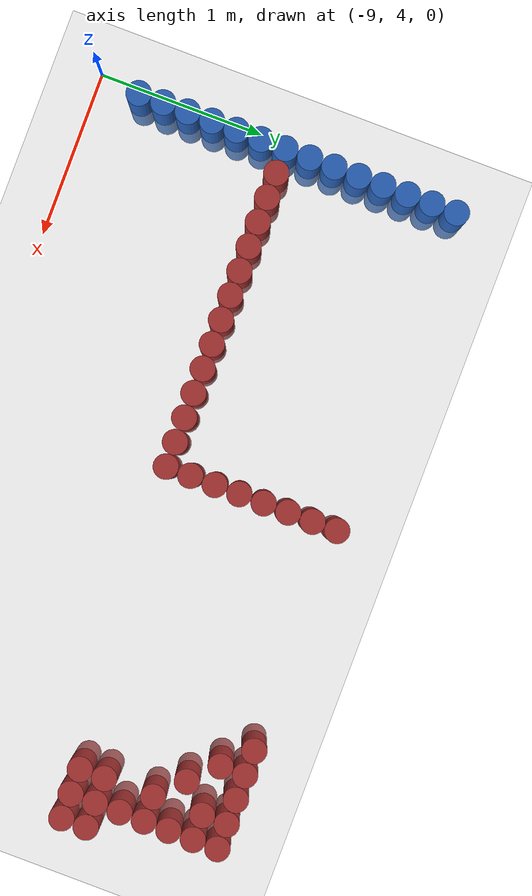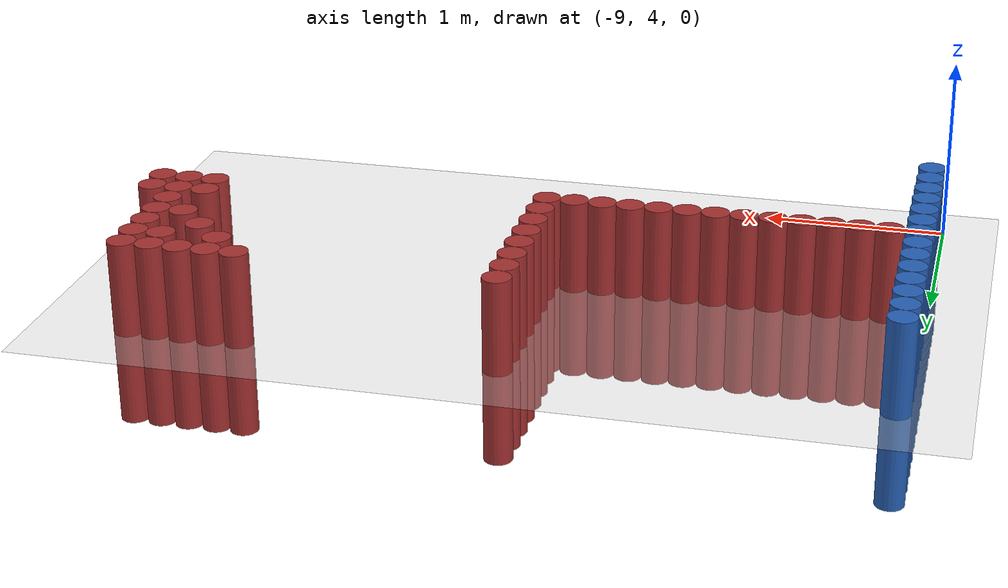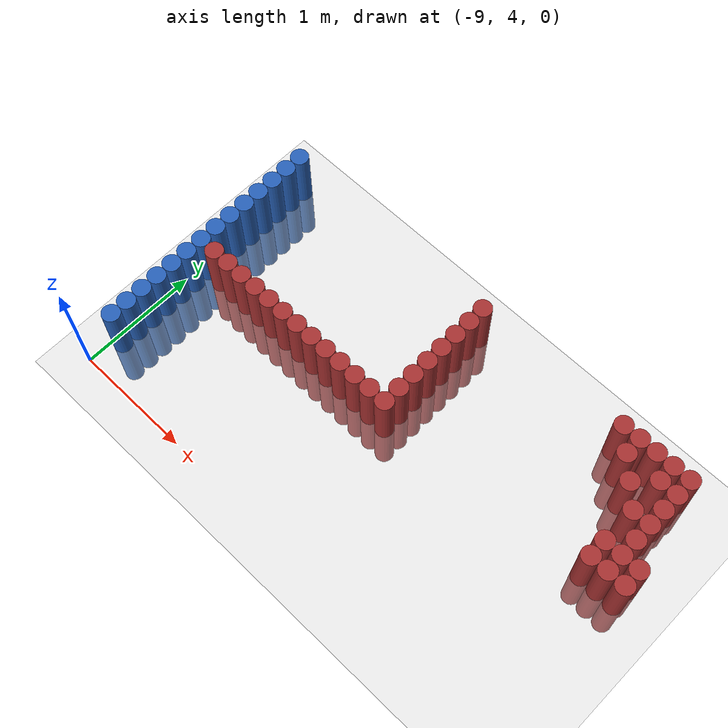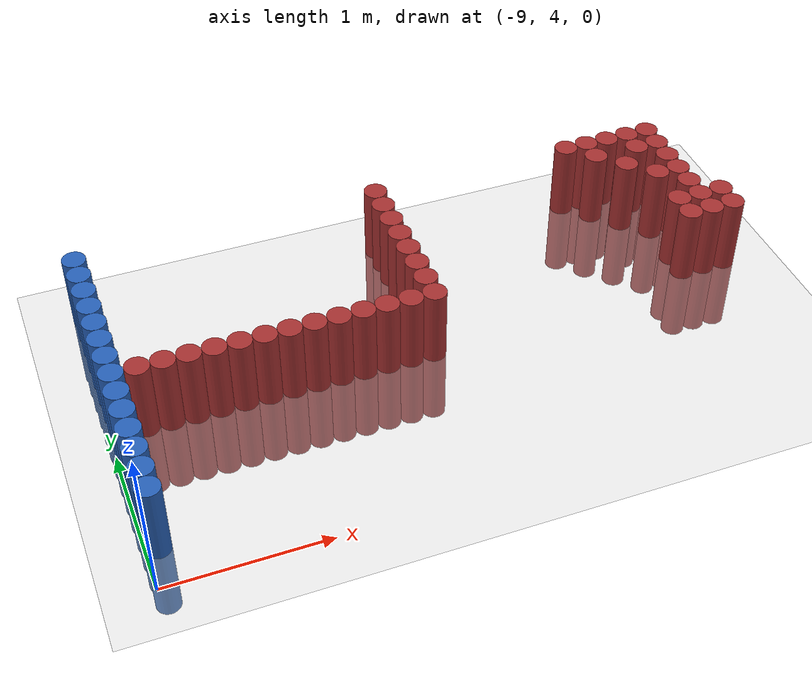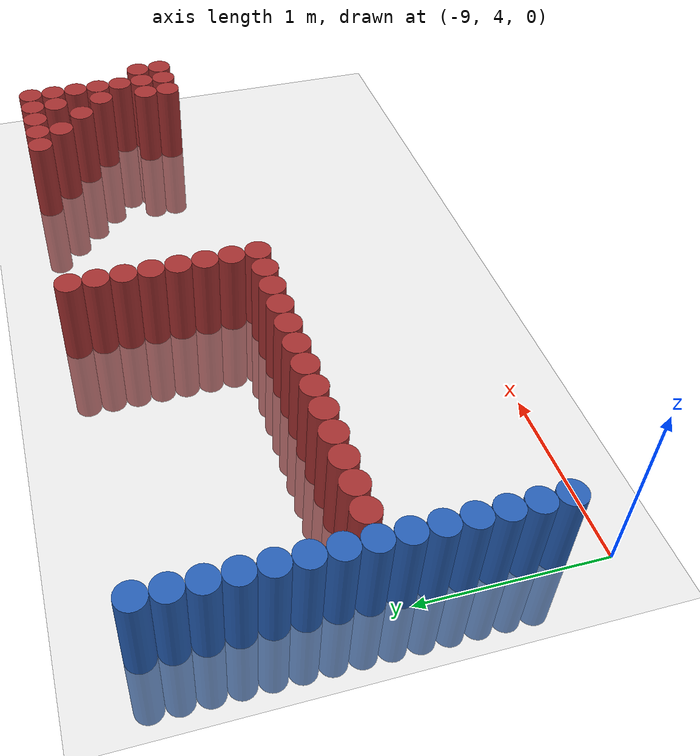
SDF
<sdf version="1.6">
 <world name="default">
  <model name="ground_plane">
   <static>1</static>
   <link name="link">
    <collision name="collision">
     <geometry><plane><normal>0 0 1</normal><size>100 100</size></plane></geometry>
     <surface><friction><ode><mu>100</mu><mu2>50</mu2></ode></friction></surface>
    </collision>
    <visual name="visual">
     <cast_shadows>0</cast_shadows>
     <geometry><plane><normal>0 0 1</normal><size>100 100</size></plane></geometry>
     <material>
      <script><uri>file://media/materials/scripts/gazebo.material</uri><name>Gazebo/Grey</name></script>
     </material>
    </visual>
   </link>
  </model>
  <model name="unit_cylinder_114">
   <static>1</static>
   <pose>-8.925000 4.275000 0.000000 0.000000 0.000000 0.000000</pose>
   <link name="link">
    <inertial>
     <mass>1</mass>
     <inertia><ixx>0.145833</ixx><ixy>0</ixy><ixz>0</ixz><iyy>0.145833</iyy><iyz>0</iyz><izz>0.125</izz></inertia>
    </inertial>
    <collision name="collision">
     <geometry><cylinder><radius>0.075000</radius><length>1</length></cylinder></geometry>
    </collision>
    <visual name="visual">
     <geometry><cylinder><radius>0.075000</radius><length>1</length></cylinder></geometry>
     <material>
      <ambient>0.152000 0.379000 0.720000 1</ambient>
      <diffuse>0.152000 0.379000 0.720000 1</diffuse>
     </material>
     <material>
      <script><name>Gazebo/Grey</name><uri>file://media/materials/scripts/gazebo.material</uri></script>
     </material>
    </visual>
   </link>
  </model>
  <model name="unit_cylinder_116">
   <static>1</static>
   <pose>-8.925000 4.425000 0.000000 0.000000 0.000000 0.000000</pose>
   <link name="link">
    <inertial>
     <mass>1</mass>
     <inertia><ixx>0.145833</ixx><ixy>0</ixy><ixz>0</ixz><iyy>0.145833</iyy><iyz>0</iyz><izz>0.125</izz></inertia>
    </inertial>
    <collision name="collision">
     <geometry><cylinder><radius>0.075000</radius><length>1</length></cylinder></geometry>
    </collision>
    <visual name="visual">
     <geometry><cylinder><radius>0.075000</radius><length>1</length></cylinder></geometry>
     <material>
      <ambient>0.152000 0.379000 0.720000 1</ambient>
      <diffuse>0.152000 0.379000 0.720000 1</diffuse>
     </material>
     <material>
      <script><name>Gazebo/Grey</name><uri>file://media/materials/scripts/gazebo.material</uri></script>
     </material>
    </visual>
   </link>
  </model>
  <model name="unit_cylinder_118">
   <static>1</static>
   <pose>-8.925000 4.575000 0.000000 0.000000 0.000000 0.000000</pose>
   <link name="link">
    <inertial>
     <mass>1</mass>
     <inertia><ixx>0.145833</ixx><ixy>0</ixy><ixz>0</ixz><iyy>0.145833</iyy><iyz>0</iyz><izz>0.125</izz></inertia>
    </inertial>
    <collision name="collision">
     <geometry><cylinder><radius>0.075000</radius><length>1</length></cylinder></geometry>
    </collision>
    <visual name="visual">
     <geometry><cylinder><radius>0.075000</radius><length>1</length></cylinder></geometry>
     <material>
      <ambient>0.152000 0.379000 0.720000 1</ambient>
      <diffuse>0.152000 0.379000 0.720000 1</diffuse>
     </material>
     <material>
      <script><name>Gazebo/Grey</name><uri>file://media/materials/scripts/gazebo.material</uri></script>
     </material>
    </visual>
   </link>
  </model>
  <model name="unit_cylinder_120">
   <static>1</static>
   <pose>-8.925000 4.725000 0.000000 0.000000 0.000000 0.000000</pose>
   <link name="link">
    <inertial>
     <mass>1</mass>
     <inertia><ixx>0.145833</ixx><ixy>0</ixy><ixz>0</ixz><iyy>0.145833</iyy><iyz>0</iyz><izz>0.125</izz></inertia>
    </inertial>
    <collision name="collision">
     <geometry><cylinder><radius>0.075000</radius><length>1</length></cylinder></geometry>
    </collision>
    <visual name="visual">
     <geometry><cylinder><radius>0.075000</radius><length>1</length></cylinder></geometry>
     <material>
      <ambient>0.152000 0.379000 0.720000 1</ambient>
      <diffuse>0.152000 0.379000 0.720000 1</diffuse>
     </material>
     <material>
      <script><name>Gazebo/Grey</name><uri>file://media/materials/scripts/gazebo.material</uri></script>
     </material>
    </visual>
   </link>
  </model>
  <model name="unit_cylinder_122">
   <static>1</static>
   <pose>-8.925000 4.875000 0.000000 0.000000 0.000000 0.000000</pose>
   <link name="link">
    <inertial>
     <mass>1</mass>
     <inertia><ixx>0.145833</ixx><ixy>0</ixy><ixz>0</ixz><iyy>0.145833</iyy><iyz>0</iyz><izz>0.125</izz></inertia>
    </inertial>
    <collision name="collision">
     <geometry><cylinder><radius>0.075000</radius><length>1</length></cylinder></geometry>
    </collision>
    <visual name="visual">
     <geometry><cylinder><radius>0.075000</radius><length>1</length></cylinder></geometry>
     <material>
      <ambient>0.152000 0.379000 0.720000 1</ambient>
      <diffuse>0.152000 0.379000 0.720000 1</diffuse>
     </material>
     <material>
      <script><name>Gazebo/Grey</name><uri>file://media/materials/scripts/gazebo.material</uri></script>
     </material>
    </visual>
   </link>
  </model>
  <model name="unit_cylinder_124">
   <static>1</static>
   <pose>-8.925000 5.025000 0.000000 0.000000 0.000000 0.000000</pose>
   <link name="link">
    <inertial>
     <mass>1</mass>
     <inertia><ixx>0.145833</ixx><ixy>0</ixy><ixz>0</ixz><iyy>0.145833</iyy><iyz>0</iyz><izz>0.125</izz></inertia>
    </inertial>
    <collision name="collision">
     <geometry><cylinder><radius>0.075000</radius><length>1</length></cylinder></geometry>
    </collision>
    <visual name="visual">
     <geometry><cylinder><radius>0.075000</radius><length>1</length></cylinder></geometry>
     <material>
      <ambient>0.152000 0.379000 0.720000 1</ambient>
      <diffuse>0.152000 0.379000 0.720000 1</diffuse>
     </material>
     <material>
      <script><name>Gazebo/Grey</name><uri>file://media/materials/scripts/gazebo.material</uri></script>
     </material>
    </visual>
   </link>
  </model>
  <model name="unit_cylinder_125">
   <static>1</static>
   <pose>-8.925000 5.175000 0.000000 0.000000 0.000000 0.000000</pose>
   <link name="link">
    <inertial>
     <mass>1</mass>
     <inertia><ixx>0.145833</ixx><ixy>0</ixy><ixz>0</ixz><iyy>0.145833</iyy><iyz>0</iyz><izz>0.125</izz></inertia>
    </inertial>
    <collision name="collision">
     <geometry><cylinder><radius>0.075000</radius><length>1</length></cylinder></geometry>
    </collision>
    <visual name="visual">
     <geometry><cylinder><radius>0.075000</radius><length>1</length></cylinder></geometry>
     <material>
      <ambient>0.152000 0.379000 0.720000 1</ambient>
      <diffuse>0.152000 0.379000 0.720000 1</diffuse>
     </material>
     <material>
      <script><name>Gazebo/Grey</name><uri>file://media/materials/scripts/gazebo.material</uri></script>
     </material>
    </visual>
   </link>
  </model>
  <model name="unit_cylinder_126">
   <static>1</static>
   <pose>-8.925000 5.325000 0.000000 0.000000 0.000000 0.000000</pose>
   <link name="link">
    <inertial>
     <mass>1</mass>
     <inertia><ixx>0.145833</ixx><ixy>0</ixy><ixz>0</ixz><iyy>0.145833</iyy><iyz>0</iyz><izz>0.125</izz></inertia>
    </inertial>
    <collision name="collision">
     <geometry><cylinder><radius>0.075000</radius><length>1</length></cylinder></geometry>
    </collision>
    <visual name="visual">
     <geometry><cylinder><radius>0.075000</radius><length>1</length></cylinder></geometry>
     <material>
      <ambient>0.152000 0.379000 0.720000 1</ambient>
      <diffuse>0.152000 0.379000 0.720000 1</diffuse>
     </material>
     <material>
      <script><name>Gazebo/Grey</name><uri>file://media/materials/scripts/gazebo.material</uri></script>
     </material>
    </visual>
   </link>
  </model>
  <model name="unit_cylinder_127">
   <static>1</static>
   <pose>-8.925000 5.475000 0.000000 0.000000 0.000000 0.000000</pose>
   <link name="link">
    <inertial>
     <mass>1</mass>
     <inertia><ixx>0.145833</ixx><ixy>0</ixy><ixz>0</ixz><iyy>0.145833</iyy><iyz>0</iyz><izz>0.125</izz></inertia>
    </inertial>
    <collision name="collision">
     <geometry><cylinder><radius>0.075000</radius><length>1</length></cylinder></geometry>
    </collision>
    <visual name="visual">
     <geometry><cylinder><radius>0.075000</radius><length>1</length></cylinder></geometry>
     <material>
      <ambient>0.152000 0.379000 0.720000 1</ambient>
      <diffuse>0.152000 0.379000 0.720000 1</diffuse>
     </material>
     <material>
      <script><name>Gazebo/Grey</name><uri>file://media/materials/scripts/gazebo.material</uri></script>
     </material>
    </visual>
   </link>
  </model>
  <model name="unit_cylinder_128">
   <static>1</static>
   <pose>-8.925000 5.625000 0.000000 0.000000 0.000000 0.000000</pose>
   <link name="link">
    <inertial>
     <mass>1</mass>
     <inertia><ixx>0.145833</ixx><ixy>0</ixy><ixz>0</ixz><iyy>0.145833</iyy><iyz>0</iyz><izz>0.125</izz></inertia>
    </inertial>
    <collision name="collision">
     <geometry><cylinder><radius>0.075000</radius><length>1</length></cylinder></geometry>
    </collision>
    <visual name="visual">
     <geometry><cylinder><radius>0.075000</radius><length>1</length></cylinder></geometry>
     <material>
      <ambient>0.152000 0.379000 0.720000 1</ambient>
      <diffuse>0.152000 0.379000 0.720000 1</diffuse>
     </material>
     <material>
      <script><name>Gazebo/Grey</name><uri>file://media/materials/scripts/gazebo.material</uri></script>
     </material>
    </visual>
   </link>
  </model>
  <model name="unit_cylinder_129">
   <static>1</static>
   <pose>-8.925000 5.775000 0.000000 0.000000 0.000000 0.000000</pose>
   <link name="link">
    <inertial>
     <mass>1</mass>
     <inertia><ixx>0.145833</ixx><ixy>0</ixy><ixz>0</ixz><iyy>0.145833</iyy><iyz>0</iyz><izz>0.125</izz></inertia>
    </inertial>
    <collision name="collision">
     <geometry><cylinder><radius>0.075000</radius><length>1</length></cylinder></geometry>
    </collision>
    <visual name="visual">
     <geometry><cylinder><radius>0.075000</radius><length>1</length></cylinder></geometry>
     <material>
      <ambient>0.152000 0.379000 0.720000 1</ambient>
      <diffuse>0.152000 0.379000 0.720000 1</diffuse>
     </material>
     <material>
      <script><name>Gazebo/Grey</name><uri>file://media/materials/scripts/gazebo.material</uri></script>
     </material>
    </visual>
   </link>
  </model>
  <model name="unit_cylinder_130">
   <static>1</static>
   <pose>-8.925000 5.925000 0.000000 0.000000 0.000000 0.000000</pose>
   <link name="link">
    <inertial>
     <mass>1</mass>
     <inertia><ixx>0.145833</ixx><ixy>0</ixy><ixz>0</ixz><iyy>0.145833</iyy><iyz>0</iyz><izz>0.125</izz></inertia>
    </inertial>
    <collision name="collision">
     <geometry><cylinder><radius>0.075000</radius><length>1</length></cylinder></geometry>
    </collision>
    <visual name="visual">
     <geometry><cylinder><radius>0.075000</radius><length>1</length></cylinder></geometry>
     <material>
      <ambient>0.152000 0.379000 0.720000 1</ambient>
      <diffuse>0.152000 0.379000 0.720000 1</diffuse>
     </material>
     <material>
      <script><name>Gazebo/Grey</name><uri>file://media/materials/scripts/gazebo.material</uri></script>
     </material>
    </visual>
   </link>
  </model>
  <model name="unit_cylinder_131">
   <static>1</static>
   <pose>-8.925000 6.075000 0.000000 0.000000 0.000000 0.000000</pose>
   <link name="link">
    <inertial>
     <mass>1</mass>
     <inertia><ixx>0.145833</ixx><ixy>0</ixy><ixz>0</ixz><iyy>0.145833</iyy><iyz>0</iyz><izz>0.125</izz></inertia>
    </inertial>
    <collision name="collision">
     <geometry><cylinder><radius>0.075000</radius><length>1</length></cylinder></geometry>
    </collision>
    <visual name="visual">
     <geometry><cylinder><radius>0.075000</radius><length>1</length></cylinder></geometry>
     <material>
      <ambient>0.152000 0.379000 0.720000 1</ambient>
      <diffuse>0.152000 0.379000 0.720000 1</diffuse>
     </material>
     <material>
      <script><name>Gazebo/Grey</name><uri>file://media/materials/scripts/gazebo.material</uri></script>
     </material>
    </visual>
   </link>
  </model>
  <model name="unit_cylinder_132">
   <static>1</static>
   <pose>-8.925000 6.225000 0.000000 0.000000 0.000000 0.000000</pose>
   <link name="link">
    <inertial>
     <mass>1</mass>
     <inertia><ixx>0.145833</ixx><ixy>0</ixy><ixz>0</ixz><iyy>0.145833</iyy><iyz>0</iyz><izz>0.125</izz></inertia>
    </inertial>
    <collision name="collision">
     <geometry><cylinder><radius>0.075000</radius><length>1</length></cylinder></geometry>
    </collision>
    <visual name="visual">
     <geometry><cylinder><radius>0.075000</radius><length>1</length></cylinder></geometry>
     <material>
      <ambient>0.152000 0.379000 0.720000 1</ambient>
      <diffuse>0.152000 0.379000 0.720000 1</diffuse>
     </material>
     <material>
      <script><name>Gazebo/Grey</name><uri>file://media/materials/scripts/gazebo.material</uri></script>
     </material>
    </visual>
   </link>
  </model>
  <model name="unit_cylinder_155">
   <static>1</static>
   <pose>-8.775000 5.175000 0.000000 0.000000 0.000000 0.000000</pose>
   <link name="link">
    <inertial>
     <mass>1</mass>
     <inertia><ixx>0.145833</ixx><ixy>0</ixy><ixz>0</ixz><iyy>0.145833</iyy><iyz>0</iyz><izz>0.125</izz></inertia>
    </inertial>
    <collision name="collision">
     <geometry><cylinder><radius>0.075000</radius><length>1</length></cylinder></geometry>
    </collision>
    <visual name="visual">
     <geometry><cylinder><radius>0.075000</radius><length>1</length></cylinder></geometry>
     <material>
      <ambient>0.648000 0.192000 0.192000 1</ambient>
      <diffuse>0.648000 0.192000 0.192000 1</diffuse>
     </material>
     <material>
      <script><name>Gazebo/Grey</name><uri>file://media/materials/scripts/gazebo.material</uri></script>
     </material>
    </visual>
   </link>
  </model>
  <model name="unit_cylinder_157">
   <static>1</static>
   <pose>-8.625000 5.175000 0.000000 0.000000 0.000000 0.000000</pose>
   <link name="link">
    <inertial>
     <mass>1</mass>
     <inertia><ixx>0.145833</ixx><ixy>0</ixy><ixz>0</ixz><iyy>0.145833</iyy><iyz>0</iyz><izz>0.125</izz></inertia>
    </inertial>
    <collision name="collision">
     <geometry><cylinder><radius>0.075000</radius><length>1</length></cylinder></geometry>
    </collision>
    <visual name="visual">
     <geometry><cylinder><radius>0.075000</radius><length>1</length></cylinder></geometry>
     <material>
      <ambient>0.648000 0.192000 0.192000 1</ambient>
      <diffuse>0.648000 0.192000 0.192000 1</diffuse>
     </material>
     <material>
      <script><name>Gazebo/Grey</name><uri>file://media/materials/scripts/gazebo.material</uri></script>
     </material>
    </visual>
   </link>
  </model>
  <model name="unit_cylinder_159">
   <static>1</static>
   <pose>-8.475000 5.175000 0.000000 0.000000 0.000000 0.000000</pose>
   <link name="link">
    <inertial>
     <mass>1</mass>
     <inertia><ixx>0.145833</ixx><ixy>0</ixy><ixz>0</ixz><iyy>0.145833</iyy><iyz>0</iyz><izz>0.125</izz></inertia>
    </inertial>
    <collision name="collision">
     <geometry><cylinder><radius>0.075000</radius><length>1</length></cylinder></geometry>
    </collision>
    <visual name="visual">
     <geometry><cylinder><radius>0.075000</radius><length>1</length></cylinder></geometry>
     <material>
      <ambient>0.648000 0.192000 0.192000 1</ambient>
      <diffuse>0.648000 0.192000 0.192000 1</diffuse>
     </material>
     <material>
      <script><name>Gazebo/Grey</name><uri>file://media/materials/scripts/gazebo.material</uri></script>
     </material>
    </visual>
   </link>
  </model>
  <model name="unit_cylinder_161">
   <static>1</static>
   <pose>-8.325000 5.175000 0.000000 0.000000 0.000000 0.000000</pose>
   <link name="link">
    <inertial>
     <mass>1</mass>
     <inertia><ixx>0.145833</ixx><ixy>0</ixy><ixz>0</ixz><iyy>0.145833</iyy><iyz>0</iyz><izz>0.125</izz></inertia>
    </inertial>
    <collision name="collision">
     <geometry><cylinder><radius>0.075000</radius><length>1</length></cylinder></geometry>
    </collision>
    <visual name="visual">
     <geometry><cylinder><radius>0.075000</radius><length>1</length></cylinder></geometry>
     <material>
      <ambient>0.648000 0.192000 0.192000 1</ambient>
      <diffuse>0.648000 0.192000 0.192000 1</diffuse>
     </material>
     <material>
      <script><name>Gazebo/Grey</name><uri>file://media/materials/scripts/gazebo.material</uri></script>
     </material>
    </visual>
   </link>
  </model>
  <model name="unit_cylinder_163">
   <static>1</static>
   <pose>-8.175000 5.175000 0.000000 0.000000 0.000000 0.000000</pose>
   <link name="link">
    <inertial>
     <mass>1</mass>
     <inertia><ixx>0.145833</ixx><ixy>0</ixy><ixz>0</ixz><iyy>0.145833</iyy><iyz>0</iyz><izz>0.125</izz></inertia>
    </inertial>
    <collision name="collision">
     <geometry><cylinder><radius>0.075000</radius><length>1</length></cylinder></geometry>
    </collision>
    <visual name="visual">
     <geometry><cylinder><radius>0.075000</radius><length>1</length></cylinder></geometry>
     <material>
      <ambient>0.648000 0.192000 0.192000 1</ambient>
      <diffuse>0.648000 0.192000 0.192000 1</diffuse>
     </material>
     <material>
      <script><name>Gazebo/Grey</name><uri>file://media/materials/scripts/gazebo.material</uri></script>
     </material>
    </visual>
   </link>
  </model>
  <model name="unit_cylinder_165">
   <static>1</static>
   <pose>-8.025000 5.175000 0.000000 0.000000 0.000000 0.000000</pose>
   <link name="link">
    <inertial>
     <mass>1</mass>
     <inertia><ixx>0.145833</ixx><ixy>0</ixy><ixz>0</ixz><iyy>0.145833</iyy><iyz>0</iyz><izz>0.125</izz></inertia>
    </inertial>
    <collision name="collision">
     <geometry><cylinder><radius>0.075000</radius><length>1</length></cylinder></geometry>
    </collision>
    <visual name="visual">
     <geometry><cylinder><radius>0.075000</radius><length>1</length></cylinder></geometry>
     <material>
      <ambient>0.648000 0.192000 0.192000 1</ambient>
      <diffuse>0.648000 0.192000 0.192000 1</diffuse>
     </material>
     <material>
      <script><name>Gazebo/Grey</name><uri>file://media/materials/scripts/gazebo.material</uri></script>
     </material>
    </visual>
   </link>
  </model>
  <model name="unit_cylinder_167">
   <static>1</static>
   <pose>-7.875000 5.175000 0.000000 0.000000 0.000000 0.000000</pose>
   <link name="link">
    <inertial>
     <mass>1</mass>
     <inertia><ixx>0.145833</ixx><ixy>0</ixy><ixz>0</ixz><iyy>0.145833</iyy><iyz>0</iyz><izz>0.125</izz></inertia>
    </inertial>
    <collision name="collision">
     <geometry><cylinder><radius>0.075000</radius><length>1</length></cylinder></geometry>
    </collision>
    <visual name="visual">
     <geometry><cylinder><radius>0.075000</radius><length>1</length></cylinder></geometry>
     <material>
      <ambient>0.648000 0.192000 0.192000 1</ambient>
      <diffuse>0.648000 0.192000 0.192000 1</diffuse>
     </material>
     <material>
      <script><name>Gazebo/Grey</name><uri>file://media/materials/scripts/gazebo.material</uri></script>
     </material>
    </visual>
   </link>
  </model>
  <model name="unit_cylinder_169">
   <static>1</static>
   <pose>-7.725000 5.175000 0.000000 0.000000 0.000000 0.000000</pose>
   <link name="link">
    <inertial>
     <mass>1</mass>
     <inertia><ixx>0.145833</ixx><ixy>0</ixy><ixz>0</ixz><iyy>0.145833</iyy><iyz>0</iyz><izz>0.125</izz></inertia>
    </inertial>
    <collision name="collision">
     <geometry><cylinder><radius>0.075000</radius><length>1</length></cylinder></geometry>
    </collision>
    <visual name="visual">
     <geometry><cylinder><radius>0.075000</radius><length>1</length></cylinder></geometry>
     <material>
      <ambient>0.648000 0.192000 0.192000 1</ambient>
      <diffuse>0.648000 0.192000 0.192000 1</diffuse>
     </material>
     <material>
      <script><name>Gazebo/Grey</name><uri>file://media/materials/scripts/gazebo.material</uri></script>
     </material>
    </visual>
   </link>
  </model>
  <model name="unit_cylinder_171">
   <static>1</static>
   <pose>-7.575000 5.175000 0.000000 0.000000 0.000000 0.000000</pose>
   <link name="link">
    <inertial>
     <mass>1</mass>
     <inertia><ixx>0.145833</ixx><ixy>0</ixy><ixz>0</ixz><iyy>0.145833</iyy><iyz>0</iyz><izz>0.125</izz></inertia>
    </inertial>
    <collision name="collision">
     <geometry><cylinder><radius>0.075000</radius><length>1</length></cylinder></geometry>
    </collision>
    <visual name="visual">
     <geometry><cylinder><radius>0.075000</radius><length>1</length></cylinder></geometry>
     <material>
      <ambient>0.648000 0.192000 0.192000 1</ambient>
      <diffuse>0.648000 0.192000 0.192000 1</diffuse>
     </material>
     <material>
      <script><name>Gazebo/Grey</name><uri>file://media/materials/scripts/gazebo.material</uri></script>
     </material>
    </visual>
   </link>
  </model>
  <model name="unit_cylinder_173">
   <static>1</static>
   <pose>-7.425000 5.175000 0.000000 0.000000 0.000000 0.000000</pose>
   <link name="link">
    <inertial>
     <mass>1</mass>
     <inertia><ixx>0.145833</ixx><ixy>0</ixy><ixz>0</ixz><iyy>0.145833</iyy><iyz>0</iyz><izz>0.125</izz></inertia>
    </inertial>
    <collision name="collision">
     <geometry><cylinder><radius>0.075000</radius><length>1</length></cylinder></geometry>
    </collision>
    <visual name="visual">
     <geometry><cylinder><radius>0.075000</radius><length>1</length></cylinder></geometry>
     <material>
      <ambient>0.648000 0.192000 0.192000 1</ambient>
      <diffuse>0.648000 0.192000 0.192000 1</diffuse>
     </material>
     <material>
      <script><name>Gazebo/Grey</name><uri>file://media/materials/scripts/gazebo.material</uri></script>
     </material>
    </visual>
   </link>
  </model>
  <model name="unit_cylinder_175">
   <static>1</static>
   <pose>-7.275000 5.175000 0.000000 0.000000 0.000000 0.000000</pose>
   <link name="link">
    <inertial>
     <mass>1</mass>
     <inertia><ixx>0.145833</ixx><ixy>0</ixy><ixz>0</ixz><iyy>0.145833</iyy><iyz>0</iyz><izz>0.125</izz></inertia>
    </inertial>
    <collision name="collision">
     <geometry><cylinder><radius>0.075000</radius><length>1</length></cylinder></geometry>
    </collision>
    <visual name="visual">
     <geometry><cylinder><radius>0.075000</radius><length>1</length></cylinder></geometry>
     <material>
      <ambient>0.648000 0.192000 0.192000 1</ambient>
      <diffuse>0.648000 0.192000 0.192000 1</diffuse>
     </material>
     <material>
      <script><name>Gazebo/Grey</name><uri>file://media/materials/scripts/gazebo.material</uri></script>
     </material>
    </visual>
   </link>
  </model>
  <model name="unit_cylinder_177">
   <static>1</static>
   <pose>-7.125000 5.175000 0.000000 0.000000 0.000000 0.000000</pose>
   <link name="link">
    <inertial>
     <mass>1</mass>
     <inertia><ixx>0.145833</ixx><ixy>0</ixy><ixz>0</ixz><iyy>0.145833</iyy><iyz>0</iyz><izz>0.125</izz></inertia>
    </inertial>
    <collision name="collision">
     <geometry><cylinder><radius>0.075000</radius><length>1</length></cylinder></geometry>
    </collision>
    <visual name="visual">
     <geometry><cylinder><radius>0.075000</radius><length>1</length></cylinder></geometry>
     <material>
      <ambient>0.648000 0.192000 0.192000 1</ambient>
      <diffuse>0.648000 0.192000 0.192000 1</diffuse>
     </material>
     <material>
      <script><name>Gazebo/Grey</name><uri>file://media/materials/scripts/gazebo.material</uri></script>
     </material>
    </visual>
   </link>
  </model>
  <model name="unit_cylinder_179">
   <static>1</static>
   <pose>-6.975000 5.175000 0.000000 0.000000 0.000000 0.000000</pose>
   <link name="link">
    <inertial>
     <mass>1</mass>
     <inertia><ixx>0.145833</ixx><ixy>0</ixy><ixz>0</ixz><iyy>0.145833</iyy><iyz>0</iyz><izz>0.125</izz></inertia>
    </inertial>
    <collision name="collision">
     <geometry><cylinder><radius>0.075000</radius><length>1</length></cylinder></geometry>
    </collision>
    <visual name="visual">
     <geometry><cylinder><radius>0.075000</radius><length>1</length></cylinder></geometry>
     <material>
      <ambient>0.648000 0.192000 0.192000 1</ambient>
      <diffuse>0.648000 0.192000 0.192000 1</diffuse>
     </material>
     <material>
      <script><name>Gazebo/Grey</name><uri>file://media/materials/scripts/gazebo.material</uri></script>
     </material>
    </visual>
   </link>
  </model>
  <model name="unit_cylinder_180">
   <static>1</static>
   <pose>-6.975000 5.325000 0.000000 0.000000 0.000000 0.000000</pose>
   <link name="link">
    <inertial>
     <mass>1</mass>
     <inertia><ixx>0.145833</ixx><ixy>0</ixy><ixz>0</ixz><iyy>0.145833</iyy><iyz>0</iyz><izz>0.125</izz></inertia>
    </inertial>
    <collision name="collision">
     <geometry><cylinder><radius>0.075000</radius><length>1</length></cylinder></geometry>
    </collision>
    <visual name="visual">
     <geometry><cylinder><radius>0.075000</radius><length>1</length></cylinder></geometry>
     <material>
      <ambient>0.648000 0.192000 0.192000 1</ambient>
      <diffuse>0.648000 0.192000 0.192000 1</diffuse>
     </material>
     <material>
      <script><name>Gazebo/Grey</name><uri>file://media/materials/scripts/gazebo.material</uri></script>
     </material>
    </visual>
   </link>
  </model>
  <model name="unit_cylinder_181">
   <static>1</static>
   <pose>-6.975000 5.475000 0.000000 0.000000 0.000000 0.000000</pose>
   <link name="link">
    <inertial>
     <mass>1</mass>
     <inertia><ixx>0.145833</ixx><ixy>0</ixy><ixz>0</ixz><iyy>0.145833</iyy><iyz>0</iyz><izz>0.125</izz></inertia>
    </inertial>
    <collision name="collision">
     <geometry><cylinder><radius>0.075000</radius><length>1</length></cylinder></geometry>
    </collision>
    <visual name="visual">
     <geometry><cylinder><radius>0.075000</radius><length>1</length></cylinder></geometry>
     <material>
      <ambient>0.648000 0.192000 0.192000 1</ambient>
      <diffuse>0.648000 0.192000 0.192000 1</diffuse>
     </material>
     <material>
      <script><name>Gazebo/Grey</name><uri>file://media/materials/scripts/gazebo.material</uri></script>
     </material>
    </visual>
   </link>
  </model>
  <model name="unit_cylinder_182">
   <static>1</static>
   <pose>-6.975000 5.625000 0.000000 0.000000 0.000000 0.000000</pose>
   <link name="link">
    <inertial>
     <mass>1</mass>
     <inertia><ixx>0.145833</ixx><ixy>0</ixy><ixz>0</ixz><iyy>0.145833</iyy><iyz>0</iyz><izz>0.125</izz></inertia>
    </inertial>
    <collision name="collision">
     <geometry><cylinder><radius>0.075000</radius><length>1</length></cylinder></geometry>
    </collision>
    <visual name="visual">
     <geometry><cylinder><radius>0.075000</radius><length>1</length></cylinder></geometry>
     <material>
      <ambient>0.648000 0.192000 0.192000 1</ambient>
      <diffuse>0.648000 0.192000 0.192000 1</diffuse>
     </material>
     <material>
      <script><name>Gazebo/Grey</name><uri>file://media/materials/scripts/gazebo.material</uri></script>
     </material>
    </visual>
   </link>
  </model>
  <model name="unit_cylinder_183">
   <static>1</static>
   <pose>-6.975000 5.775000 0.000000 0.000000 0.000000 0.000000</pose>
   <link name="link">
    <inertial>
     <mass>1</mass>
     <inertia><ixx>0.145833</ixx><ixy>0</ixy><ixz>0</ixz><iyy>0.145833</iyy><iyz>0</iyz><izz>0.125</izz></inertia>
    </inertial>
    <collision name="collision">
     <geometry><cylinder><radius>0.075000</radius><length>1</length></cylinder></geometry>
    </collision>
    <visual name="visual">
     <geometry><cylinder><radius>0.075000</radius><length>1</length></cylinder></geometry>
     <material>
      <ambient>0.648000 0.192000 0.192000 1</ambient>
      <diffuse>0.648000 0.192000 0.192000 1</diffuse>
     </material>
     <material>
      <script><name>Gazebo/Grey</name><uri>file://media/materials/scripts/gazebo.material</uri></script>
     </material>
    </visual>
   </link>
  </model>
  <model name="unit_cylinder_184">
   <static>1</static>
   <pose>-6.975000 5.925000 0.000000 0.000000 0.000000 0.000000</pose>
   <link name="link">
    <inertial>
     <mass>1</mass>
     <inertia><ixx>0.145833</ixx><ixy>0</ixy><ixz>0</ixz><iyy>0.145833</iyy><iyz>0</iyz><izz>0.125</izz></inertia>
    </inertial>
    <collision name="collision">
     <geometry><cylinder><radius>0.075000</radius><length>1</length></cylinder></geometry>
    </collision>
    <visual name="visual">
     <geometry><cylinder><radius>0.075000</radius><length>1</length></cylinder></geometry>
     <material>
      <ambient>0.648000 0.192000 0.192000 1</ambient>
      <diffuse>0.648000 0.192000 0.192000 1</diffuse>
     </material>
     <material>
      <script><name>Gazebo/Grey</name><uri>file://media/materials/scripts/gazebo.material</uri></script>
     </material>
    </visual>
   </link>
  </model>
  <model name="unit_cylinder_185">
   <static>1</static>
   <pose>-6.975000 6.075000 0.000000 0.000000 0.000000 0.000000</pose>
   <link name="link">
    <inertial>
     <mass>1</mass>
     <inertia><ixx>0.145833</ixx><ixy>0</ixy><ixz>0</ixz><iyy>0.145833</iyy><iyz>0</iyz><izz>0.125</izz></inertia>
    </inertial>
    <collision name="collision">
     <geometry><cylinder><radius>0.075000</radius><length>1</length></cylinder></geometry>
    </collision>
    <visual name="visual">
     <geometry><cylinder><radius>0.075000</radius><length>1</length></cylinder></geometry>
     <material>
      <ambient>0.648000 0.192000 0.192000 1</ambient>
      <diffuse>0.648000 0.192000 0.192000 1</diffuse>
     </material>
     <material>
      <script><name>Gazebo/Grey</name><uri>file://media/materials/scripts/gazebo.material</uri></script>
     </material>
    </visual>
   </link>
  </model>
  <model name="unit_cylinder_186">
   <static>1</static>
   <pose>-6.975000 6.225000 0.000000 0.000000 0.000000 0.000000</pose>
   <link name="link">
    <inertial>
     <mass>1</mass>
     <inertia><ixx>0.145833</ixx><ixy>0</ixy><ixz>0</ixz><iyy>0.145833</iyy><iyz>0</iyz><izz>0.125</izz></inertia>
    </inertial>
    <collision name="collision">
     <geometry><cylinder><radius>0.075000</radius><length>1</length></cylinder></geometry>
    </collision>
    <visual name="visual">
     <geometry><cylinder><radius>0.075000</radius><length>1</length></cylinder></geometry>
     <material>
      <ambient>0.648000 0.192000 0.192000 1</ambient>
      <diffuse>0.648000 0.192000 0.192000 1</diffuse>
     </material>
     <material>
      <script><name>Gazebo/Grey</name><uri>file://media/materials/scripts/gazebo.material</uri></script>
     </material>
    </visual>
   </link>
  </model>
  <model name="unit_cylinder_221">
   <static>1</static>
   <pose>-5.625000 6.225000 0.000000 0.000000 0.000000 0.000000</pose>
   <link name="link">
    <inertial>
     <mass>1</mass>
     <inertia><ixx>0.145833</ixx><ixy>0</ixy><ixz>0</ixz><iyy>0.145833</iyy><iyz>0</iyz><izz>0.125</izz></inertia>
    </inertial>
    <collision name="collision">
     <geometry><cylinder><radius>0.075000</radius><length>1</length></cylinder></geometry>
    </collision>
    <visual name="visual">
     <geometry><cylinder><radius>0.075000</radius><length>1</length></cylinder></geometry>
     <material>
      <ambient>0.648000 0.192000 0.192000 1</ambient>
      <diffuse>0.648000 0.192000 0.192000 1</diffuse>
     </material>
     <material>
      <script><name>Gazebo/Grey</name><uri>file://media/materials/scripts/gazebo.material</uri></script>
     </material>
    </visual>
   </link>
  </model>
  <model name="unit_cylinder_224">
   <static>1</static>
   <pose>-5.475000 6.075000 0.000000 0.000000 0.000000 0.000000</pose>
   <link name="link">
    <inertial>
     <mass>1</mass>
     <inertia><ixx>0.145833</ixx><ixy>0</ixy><ixz>0</ixz><iyy>0.145833</iyy><iyz>0</iyz><izz>0.125</izz></inertia>
    </inertial>
    <collision name="collision">
     <geometry><cylinder><radius>0.075000</radius><length>1</length></cylinder></geometry>
    </collision>
    <visual name="visual">
     <geometry><cylinder><radius>0.075000</radius><length>1</length></cylinder></geometry>
     <material>
      <ambient>0.648000 0.192000 0.192000 1</ambient>
      <diffuse>0.648000 0.192000 0.192000 1</diffuse>
     </material>
     <material>
      <script><name>Gazebo/Grey</name><uri>file://media/materials/scripts/gazebo.material</uri></script>
     </material>
    </visual>
   </link>
  </model>
  <model name="unit_cylinder_225">
   <static>1</static>
   <pose>-5.475000 6.225000 0.000000 0.000000 0.000000 0.000000</pose>
   <link name="link">
    <inertial>
     <mass>1</mass>
     <inertia><ixx>0.145833</ixx><ixy>0</ixy><ixz>0</ixz><iyy>0.145833</iyy><iyz>0</iyz><izz>0.125</izz></inertia>
    </inertial>
    <collision name="collision">
     <geometry><cylinder><radius>0.075000</radius><length>1</length></cylinder></geometry>
    </collision>
    <visual name="visual">
     <geometry><cylinder><radius>0.075000</radius><length>1</length></cylinder></geometry>
     <material>
      <ambient>0.648000 0.192000 0.192000 1</ambient>
      <diffuse>0.648000 0.192000 0.192000 1</diffuse>
     </material>
     <material>
      <script><name>Gazebo/Grey</name><uri>file://media/materials/scripts/gazebo.material</uri></script>
     </material>
    </visual>
   </link>
  </model>
  <model name="unit_cylinder_229">
   <static>1</static>
   <pose>-5.325000 5.925000 0.000000 0.000000 0.000000 0.000000</pose>
   <link name="link">
    <inertial>
     <mass>1</mass>
     <inertia><ixx>0.145833</ixx><ixy>0</ixy><ixz>0</ixz><iyy>0.145833</iyy><iyz>0</iyz><izz>0.125</izz></inertia>
    </inertial>
    <collision name="collision">
     <geometry><cylinder><radius>0.075000</radius><length>1</length></cylinder></geometry>
    </collision>
    <visual name="visual">
     <geometry><cylinder><radius>0.075000</radius><length>1</length></cylinder></geometry>
     <material>
      <ambient>0.648000 0.192000 0.192000 1</ambient>
      <diffuse>0.648000 0.192000 0.192000 1</diffuse>
     </material>
     <material>
      <script><name>Gazebo/Grey</name><uri>file://media/materials/scripts/gazebo.material</uri></script>
     </material>
    </visual>
   </link>
  </model>
  <model name="unit_cylinder_230">
   <static>1</static>
   <pose>-5.325000 6.225000 0.000000 0.000000 0.000000 0.000000</pose>
   <link name="link">
    <inertial>
     <mass>1</mass>
     <inertia><ixx>0.145833</ixx><ixy>0</ixy><ixz>0</ixz><iyy>0.145833</iyy><iyz>0</iyz><izz>0.125</izz></inertia>
    </inertial>
    <collision name="collision">
     <geometry><cylinder><radius>0.075000</radius><length>1</length></cylinder></geometry>
    </collision>
    <visual name="visual">
     <geometry><cylinder><radius>0.075000</radius><length>1</length></cylinder></geometry>
     <material>
      <ambient>0.648000 0.192000 0.192000 1</ambient>
      <diffuse>0.648000 0.192000 0.192000 1</diffuse>
     </material>
     <material>
      <script><name>Gazebo/Grey</name><uri>file://media/materials/scripts/gazebo.material</uri></script>
     </material>
    </visual>
   </link>
  </model>
  <model name="unit_cylinder_233">
   <static>1</static>
   <pose>-5.175000 5.325000 0.000000 0.000000 0.000000 0.000000</pose>
   <link name="link">
    <inertial>
     <mass>1</mass>
     <inertia><ixx>0.145833</ixx><ixy>0</ixy><ixz>0</ixz><iyy>0.145833</iyy><iyz>0</iyz><izz>0.125</izz></inertia>
    </inertial>
    <collision name="collision">
     <geometry><cylinder><radius>0.075000</radius><length>1</length></cylinder></geometry>
    </collision>
    <visual name="visual">
     <geometry><cylinder><radius>0.075000</radius><length>1</length></cylinder></geometry>
     <material>
      <ambient>0.648000 0.192000 0.192000 1</ambient>
      <diffuse>0.648000 0.192000 0.192000 1</diffuse>
     </material>
     <material>
      <script><name>Gazebo/Grey</name><uri>file://media/materials/scripts/gazebo.material</uri></script>
     </material>
    </visual>
   </link>
  </model>
  <model name="unit_cylinder_234">
   <static>1</static>
   <pose>-5.175000 5.475000 0.000000 0.000000 0.000000 0.000000</pose>
   <link name="link">
    <inertial>
     <mass>1</mass>
     <inertia><ixx>0.145833</ixx><ixy>0</ixy><ixz>0</ixz><iyy>0.145833</iyy><iyz>0</iyz><izz>0.125</izz></inertia>
    </inertial>
    <collision name="collision">
     <geometry><cylinder><radius>0.075000</radius><length>1</length></cylinder></geometry>
    </collision>
    <visual name="visual">
     <geometry><cylinder><radius>0.075000</radius><length>1</length></cylinder></geometry>
     <material>
      <ambient>0.648000 0.192000 0.192000 1</ambient>
      <diffuse>0.648000 0.192000 0.192000 1</diffuse>
     </material>
     <material>
      <script><name>Gazebo/Grey</name><uri>file://media/materials/scripts/gazebo.material</uri></script>
     </material>
    </visual>
   </link>
  </model>
  <model name="unit_cylinder_235">
   <static>1</static>
   <pose>-5.175000 5.775000 0.000000 0.000000 0.000000 0.000000</pose>
   <link name="link">
    <inertial>
     <mass>1</mass>
     <inertia><ixx>0.145833</ixx><ixy>0</ixy><ixz>0</ixz><iyy>0.145833</iyy><iyz>0</iyz><izz>0.125</izz></inertia>
    </inertial>
    <collision name="collision">
     <geometry><cylinder><radius>0.075000</radius><length>1</length></cylinder></geometry>
    </collision>
    <visual name="visual">
     <geometry><cylinder><radius>0.075000</radius><length>1</length></cylinder></geometry>
     <material>
      <ambient>0.648000 0.192000 0.192000 1</ambient>
      <diffuse>0.648000 0.192000 0.192000 1</diffuse>
     </material>
     <material>
      <script><name>Gazebo/Grey</name><uri>file://media/materials/scripts/gazebo.material</uri></script>
     </material>
    </visual>
   </link>
  </model>
  <model name="unit_cylinder_236">
   <static>1</static>
   <pose>-5.175000 6.075000 0.000000 0.000000 0.000000 0.000000</pose>
   <link name="link">
    <inertial>
     <mass>1</mass>
     <inertia><ixx>0.145833</ixx><ixy>0</ixy><ixz>0</ixz><iyy>0.145833</iyy><iyz>0</iyz><izz>0.125</izz></inertia>
    </inertial>
    <collision name="collision">
     <geometry><cylinder><radius>0.075000</radius><length>1</length></cylinder></geometry>
    </collision>
    <visual name="visual">
     <geometry><cylinder><radius>0.075000</radius><length>1</length></cylinder></geometry>
     <material>
      <ambient>0.648000 0.192000 0.192000 1</ambient>
      <diffuse>0.648000 0.192000 0.192000 1</diffuse>
     </material>
     <material>
      <script><name>Gazebo/Grey</name><uri>file://media/materials/scripts/gazebo.material</uri></script>
     </material>
    </visual>
   </link>
  </model>
  <model name="unit_cylinder_237">
   <static>1</static>
   <pose>-5.175000 6.225000 0.000000 0.000000 0.000000 0.000000</pose>
   <link name="link">
    <inertial>
     <mass>1</mass>
     <inertia><ixx>0.145833</ixx><ixy>0</ixy><ixz>0</ixz><iyy>0.145833</iyy><iyz>0</iyz><izz>0.125</izz></inertia>
    </inertial>
    <collision name="collision">
     <geometry><cylinder><radius>0.075000</radius><length>1</length></cylinder></geometry>
    </collision>
    <visual name="visual">
     <geometry><cylinder><radius>0.075000</radius><length>1</length></cylinder></geometry>
     <material>
      <ambient>0.648000 0.192000 0.192000 1</ambient>
      <diffuse>0.648000 0.192000 0.192000 1</diffuse>
     </material>
     <material>
      <script><name>Gazebo/Grey</name><uri>file://media/materials/scripts/gazebo.material</uri></script>
     </material>
    </visual>
   </link>
  </model>
  <model name="unit_cylinder_239">
   <static>1</static>
   <pose>-5.025000 5.325000 0.000000 0.000000 0.000000 0.000000</pose>
   <link name="link">
    <inertial>
     <mass>1</mass>
     <inertia><ixx>0.145833</ixx><ixy>0</ixy><ixz>0</ixz><iyy>0.145833</iyy><iyz>0</iyz><izz>0.125</izz></inertia>
    </inertial>
    <collision name="collision">
     <geometry><cylinder><radius>0.075000</radius><length>1</length></cylinder></geometry>
    </collision>
    <visual name="visual">
     <geometry><cylinder><radius>0.075000</radius><length>1</length></cylinder></geometry>
     <material>
      <ambient>0.648000 0.192000 0.192000 1</ambient>
      <diffuse>0.648000 0.192000 0.192000 1</diffuse>
     </material>
     <material>
      <script><name>Gazebo/Grey</name><uri>file://media/materials/scripts/gazebo.material</uri></script>
     </material>
    </visual>
   </link>
  </model>
  <model name="unit_cylinder_240">
   <static>1</static>
   <pose>-5.025000 5.475000 0.000000 0.000000 0.000000 0.000000</pose>
   <link name="link">
    <inertial>
     <mass>1</mass>
     <inertia><ixx>0.145833</ixx><ixy>0</ixy><ixz>0</ixz><iyy>0.145833</iyy><iyz>0</iyz><izz>0.125</izz></inertia>
    </inertial>
    <collision name="collision">
     <geometry><cylinder><radius>0.075000</radius><length>1</length></cylinder></geometry>
    </collision>
    <visual name="visual">
     <geometry><cylinder><radius>0.075000</radius><length>1</length></cylinder></geometry>
     <material>
      <ambient>0.648000 0.192000 0.192000 1</ambient>
      <diffuse>0.648000 0.192000 0.192000 1</diffuse>
     </material>
     <material>
      <script><name>Gazebo/Grey</name><uri>file://media/materials/scripts/gazebo.material</uri></script>
     </material>
    </visual>
   </link>
  </model>
  <model name="unit_cylinder_241">
   <static>1</static>
   <pose>-5.025000 5.625000 0.000000 0.000000 0.000000 0.000000</pose>
   <link name="link">
    <inertial>
     <mass>1</mass>
     <inertia><ixx>0.145833</ixx><ixy>0</ixy><ixz>0</ixz><iyy>0.145833</iyy><iyz>0</iyz><izz>0.125</izz></inertia>
    </inertial>
    <collision name="collision">
     <geometry><cylinder><radius>0.075000</radius><length>1</length></cylinder></geometry>
    </collision>
    <visual name="visual">
     <geometry><cylinder><radius>0.075000</radius><length>1</length></cylinder></geometry>
     <material>
      <ambient>0.648000 0.192000 0.192000 1</ambient>
      <diffuse>0.648000 0.192000 0.192000 1</diffuse>
     </material>
     <material>
      <script><name>Gazebo/Grey</name><uri>file://media/materials/scripts/gazebo.material</uri></script>
     </material>
    </visual>
   </link>
  </model>
  <model name="unit_cylinder_242">
   <static>1</static>
   <pose>-5.025000 5.775000 0.000000 0.000000 0.000000 0.000000</pose>
   <link name="link">
    <inertial>
     <mass>1</mass>
     <inertia><ixx>0.145833</ixx><ixy>0</ixy><ixz>0</ixz><iyy>0.145833</iyy><iyz>0</iyz><izz>0.125</izz></inertia>
    </inertial>
    <collision name="collision">
     <geometry><cylinder><radius>0.075000</radius><length>1</length></cylinder></geometry>
    </collision>
    <visual name="visual">
     <geometry><cylinder><radius>0.075000</radius><length>1</length></cylinder></geometry>
     <material>
      <ambient>0.648000 0.192000 0.192000 1</ambient>
      <diffuse>0.648000 0.192000 0.192000 1</diffuse>
     </material>
     <material>
      <script><name>Gazebo/Grey</name><uri>file://media/materials/scripts/gazebo.material</uri></script>
     </material>
    </visual>
   </link>
  </model>
  <model name="unit_cylinder_243">
   <static>1</static>
   <pose>-5.025000 5.925000 0.000000 0.000000 0.000000 0.000000</pose>
   <link name="link">
    <inertial>
     <mass>1</mass>
     <inertia><ixx>0.145833</ixx><ixy>0</ixy><ixz>0</ixz><iyy>0.145833</iyy><iyz>0</iyz><izz>0.125</izz></inertia>
    </inertial>
    <collision name="collision">
     <geometry><cylinder><radius>0.075000</radius><length>1</length></cylinder></geometry>
    </collision>
    <visual name="visual">
     <geometry><cylinder><radius>0.075000</radius><length>1</length></cylinder></geometry>
     <material>
      <ambient>0.648000 0.192000 0.192000 1</ambient>
      <diffuse>0.648000 0.192000 0.192000 1</diffuse>
     </material>
     <material>
      <script><name>Gazebo/Grey</name><uri>file://media/materials/scripts/gazebo.material</uri></script>
     </material>
    </visual>
   </link>
  </model>
  <model name="unit_cylinder_244">
   <static>1</static>
   <pose>-5.025000 6.075000 0.000000 0.000000 0.000000 0.000000</pose>
   <link name="link">
    <inertial>
     <mass>1</mass>
     <inertia><ixx>0.145833</ixx><ixy>0</ixy><ixz>0</ixz><iyy>0.145833</iyy><iyz>0</iyz><izz>0.125</izz></inertia>
    </inertial>
    <collision name="collision">
     <geometry><cylinder><radius>0.075000</radius><length>1</length></cylinder></geometry>
    </collision>
    <visual name="visual">
     <geometry><cylinder><radius>0.075000</radius><length>1</length></cylinder></geometry>
     <material>
      <ambient>0.648000 0.192000 0.192000 1</ambient>
      <diffuse>0.648000 0.192000 0.192000 1</diffuse>
     </material>
     <material>
      <script><name>Gazebo/Grey</name><uri>file://media/materials/scripts/gazebo.material</uri></script>
     </material>
    </visual>
   </link>
  </model>
  <model name="unit_cylinder_245">
   <static>1</static>
   <pose>-5.025000 6.225000 0.000000 0.000000 0.000000 0.000000</pose>
   <link name="link">
    <inertial>
     <mass>1</mass>
     <inertia><ixx>0.145833</ixx><ixy>0</ixy><ixz>0</ixz><iyy>0.145833</iyy><iyz>0</iyz><izz>0.125</izz></inertia>
    </inertial>
    <collision name="collision">
     <geometry><cylinder><radius>0.075000</radius><length>1</length></cylinder></geometry>
    </collision>
    <visual name="visual">
     <geometry><cylinder><radius>0.075000</radius><length>1</length></cylinder></geometry>
     <material>
      <ambient>0.648000 0.192000 0.192000 1</ambient>
      <diffuse>0.648000 0.192000 0.192000 1</diffuse>
     </material>
     <material>
      <script><name>Gazebo/Grey</name><uri>file://media/materials/scripts/gazebo.material</uri></script>
     </material>
    </visual>
   </link>
  </model>
  <model name="unit_cylinder_249">
   <static>1</static>
   <pose>-4.875000 5.325000 0.000000 0.000000 0.000000 0.000000</pose>
   <link name="link">
    <inertial>
     <mass>1</mass>
     <inertia><ixx>0.145833</ixx><ixy>0</ixy><ixz>0</ixz><iyy>0.145833</iyy><iyz>0</iyz><izz>0.125</izz></inertia>
    </inertial>
    <collision name="collision">
     <geometry><cylinder><radius>0.075000</radius><length>1</length></cylinder></geometry>
    </collision>
    <visual name="visual">
     <geometry><cylinder><radius>0.075000</radius><length>1</length></cylinder></geometry>
     <material>
      <ambient>0.648000 0.192000 0.192000 1</ambient>
      <diffuse>0.648000 0.192000 0.192000 1</diffuse>
     </material>
     <material>
      <script><name>Gazebo/Grey</name><uri>file://media/materials/scripts/gazebo.material</uri></script>
     </material>
    </visual>
   </link>
  </model>
  <model name="unit_cylinder_250">
   <static>1</static>
   <pose>-4.875000 5.475000 0.000000 0.000000 0.000000 0.000000</pose>
   <link name="link">
    <inertial>
     <mass>1</mass>
     <inertia><ixx>0.145833</ixx><ixy>0</ixy><ixz>0</ixz><iyy>0.145833</iyy><iyz>0</iyz><izz>0.125</izz></inertia>
    </inertial>
    <collision name="collision">
     <geometry><cylinder><radius>0.075000</radius><length>1</length></cylinder></geometry>
    </collision>
    <visual name="visual">
     <geometry><cylinder><radius>0.075000</radius><length>1</length></cylinder></geometry>
     <material>
      <ambient>0.648000 0.192000 0.192000 1</ambient>
      <diffuse>0.648000 0.192000 0.192000 1</diffuse>
     </material>
     <material>
      <script><name>Gazebo/Grey</name><uri>file://media/materials/scripts/gazebo.material</uri></script>
     </material>
    </visual>
   </link>
  </model>
 </world>
</sdf>
